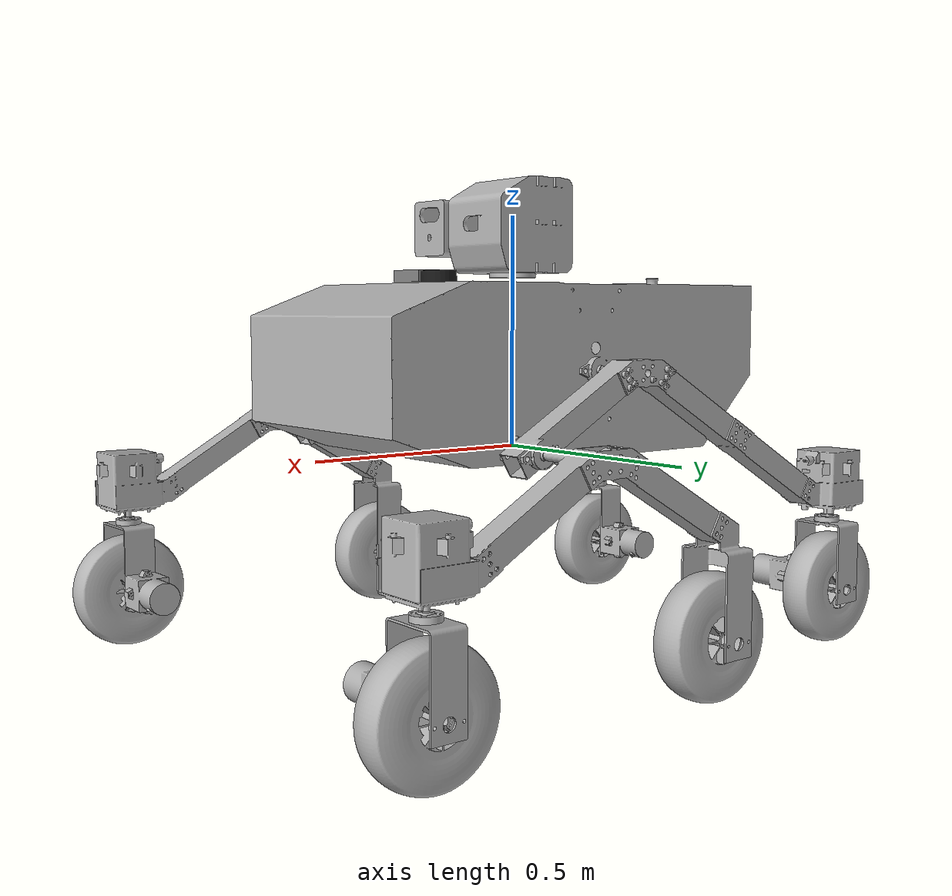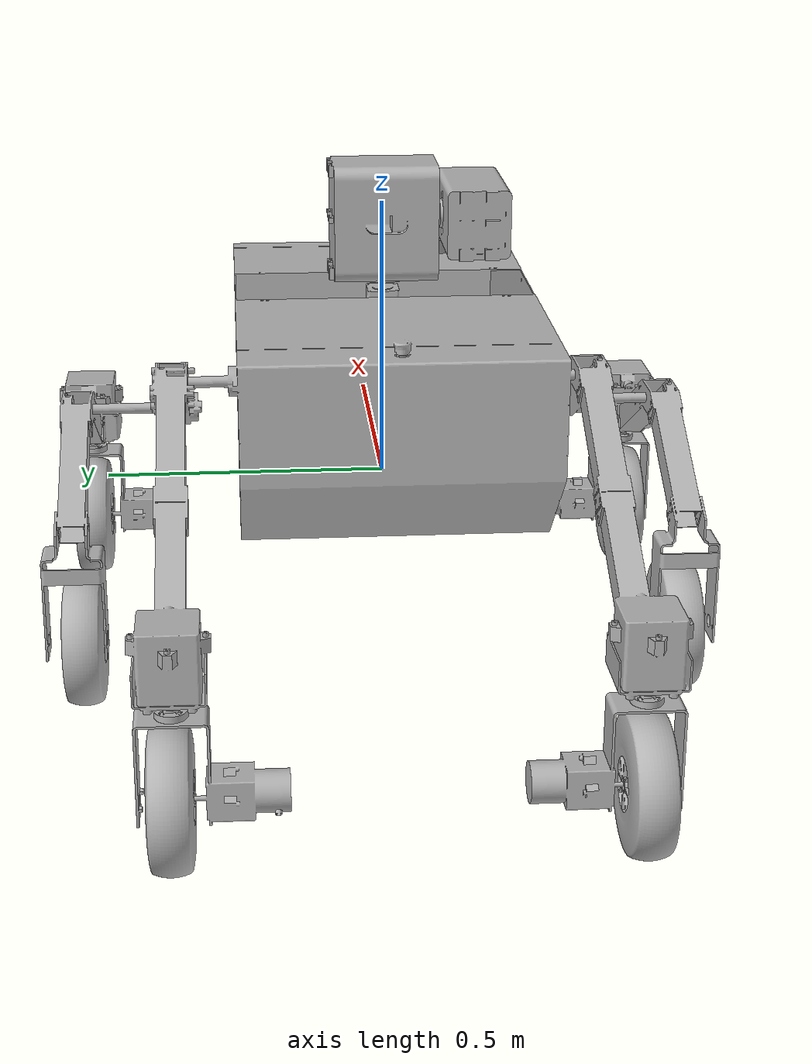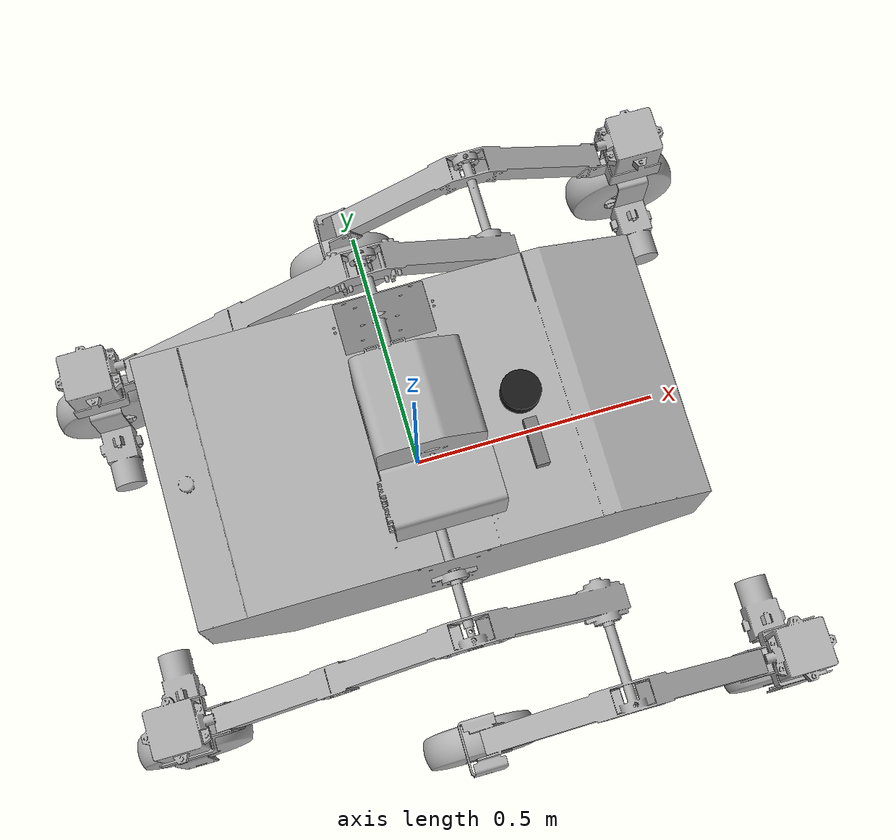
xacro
<?xml version="1.0" ?>
<robot name="ika" xmlns:xacro="http://www.ros.org/wiki/xacro">

<xacro:include filename="$(find ika_description)/urdf/materials.xacro" />
<xacro:include filename="$(find ika_description)/urdf/ika.trans" />
<xacro:include filename="$(find ika_description)/urdf/ika.gazebo" />
<xacro:include filename="$(find ika_description)/urdf/rplidar_s2.xacro"/>
<xacro:include filename="$(find ika_description)/urdf/d435_camera.xacro"/>
<link name="base_link">
  <inertial>
    <origin xyz="0.005414069729213678 -9.213349753885084e-05 0.18125650823624936" rpy="0 0 0"/>
    <mass value="33.27397338943597"/>
    <inertia ixx="1.776669" iyy="3.447502" izz="4.12897" ixy="-0.000217" iyz="8.1e-05" ixz="0.106412"/>
  </inertial>
  <visual>
    <origin xyz="0 0 0" rpy="0 0 0"/>
    <geometry>
      <mesh filename="file://$(find ika_description)/meshes/base_link.stl" scale="0.001 0.001 0.001"/>
    </geometry>
    <material name="silver"/>
  </visual>
  <collision>
    <origin xyz="0 0 0" rpy="0 0 0"/>
    <geometry>
      <mesh filename="file://$(find ika_description)/meshes/base_link.stl" scale="0.001 0.001 0.001"/>
    </geometry>
  </collision>
</link>

<!-- Lidar (RPLidar S2) -->
<xacro:rplidar_s2 parent="base_link" name="lidar" xyz="0.2 0 0.36" rpy="0 0.035 0"/>
<xacro:rplidar_s2_gazebo_plugin name="lidar"/>

<!-- Kamera (D435) -->
<xacro:realsense_d435 parent="base_link" name="camera" xyz="0.2 -0.10 0.37" rpy="0 0 0"/>
<xacro:d435_gazebo_plugins name="camera"/>

<link name="lazer_alt_v1_1">
  <inertial>
    <origin xyz="0.0014888107746208197 -0.0035899898514626357 0.10456339198720316" rpy="0 0 0"/>
    <mass value="16.247587853935794"/>
    <inertia ixx="0.136244" iyy="0.135351" izz="0.128752" ixy="0.000564" iyz="0.000306" ixz="0.003402"/>
  </inertial>
  <visual>
    <origin xyz="-0.000155 0.001158 -0.366945" rpy="0 0 0"/>
    <geometry>
      <mesh filename="file://$(find ika_description)/meshes/lazer_alt_v1_1.stl" scale="0.001 0.001 0.001"/>
    </geometry>
    <material name="silver"/>
  </visual>
  <collision>
    <origin xyz="-0.000155 0.001158 -0.366945" rpy="0 0 0"/>
    <geometry>
      <mesh filename="file://$(find ika_description)/meshes/lazer_alt_v1_1.stl" scale="0.001 0.001 0.001"/>
    </geometry>
  </collision>
</link>

<link name="lazer_kafa_v1_1">
  <inertial>
    <origin xyz="-0.0027014583019456073 -0.05982148023716494 -0.0011419657213441736" rpy="0 0 0"/>
    <mass value="8.010863664139112"/>
    <inertia ixx="0.026022" iyy="0.04774" izz="0.04586" ixy="3e-06" iyz="-2e-06" ixz="0.000606"/>
  </inertial>
  <visual>
    <origin xyz="-0.006368 0.101158 -0.476695" rpy="0 0 0"/>
    <geometry>
      <mesh filename="file://$(find ika_description)/meshes/lazer_kafa_v1_1.stl" scale="0.001 0.001 0.001"/>
    </geometry>
    <material name="silver"/>
  </visual>
  <collision>
    <origin xyz="-0.006368 0.101158 -0.476695" rpy="0 0 0"/>
    <geometry>
      <mesh filename="file://$(find ika_description)/meshes/lazer_kafa_v1_1.stl" scale="0.001 0.001 0.001"/>
    </geometry>
  </collision>
</link>

<link name="sag_montaj_v1__1__1">
  <inertial>
    <origin xyz="-0.44919019560547796 0.00875238591849753 -0.21462842041488556" rpy="0 0 0"/>
    <mass value="4.8161613365412785"/>
    <inertia ixx="0.040395" iyy="0.433816" izz="0.40114" ixy="0.000534" iyz="0.000255" ixz="-0.096748"/>
  </inertial>
  <visual>
    <origin xyz="0.002 0.39 -0.175" rpy="0 0 0"/>
    <geometry>
      <mesh filename="file://$(find ika_description)/meshes/sag_montaj_v1__1__1.stl" scale="0.001 0.001 0.001"/>
    </geometry>
    <material name="silver"/>
  </visual>
  <collision>
    <origin xyz="0.002 0.39 -0.175" rpy="0 0 0"/>
    <geometry>
      <mesh filename="file://$(find ika_description)/meshes/sag_montaj_v1__1__1.stl" scale="0.001 0.001 0.001"/>
    </geometry>
  </collision>
</link>

<link name="sol_montaj_1_v81_v1__1__1">
  <inertial>
    <origin xyz="-0.43495134921430906 -0.008654379051771854 -0.20911455415076846" rpy="0 0 0"/>
    <mass value="4.962424557602971"/>
    <inertia ixx="0.04574" iyy="0.473545" izz="0.4357" ixy="-0.000757" iyz="-0.000346" ixz="-0.109048"/>
  </inertial>
  <visual>
    <origin xyz="0.001 -0.389 -0.175762" rpy="0 0 0"/>
    <geometry>
      <mesh filename="file://$(find ika_description)/meshes/sol_montaj_1_v81_v1__1__1.stl" scale="0.001 0.001 0.001"/>
    </geometry>
    <material name="silver"/>
  </visual>
  <collision>
    <origin xyz="0.001 -0.389 -0.175762" rpy="0 0 0"/>
    <geometry>
      <mesh filename="file://$(find ika_description)/meshes/sol_montaj_1_v81_v1__1__1.stl" scale="0.001 0.001 0.001"/>
    </geometry>
  </collision>
</link>

<link name="sag_on_montaj_v1_1">
  <inertial>
    <origin xyz="0.23792899315908234 -0.1512484643207898 -0.1176233402579002" rpy="0 0 0"/>
    <mass value="4.823288970520174"/>
    <inertia ixx="0.026621" iyy="0.284354" izz="0.268742" ixy="0.001967" iyz="-0.001043" ixz="-0.011091"/>
  </inertial>
  <visual>
    <origin xyz="-0.271451 0.421 -0.036349" rpy="0 0 0"/>
    <geometry>
      <mesh filename="file://$(find ika_description)/meshes/sag_on_montaj_v1_1.stl" scale="0.001 0.001 0.001"/>
    </geometry>
    <material name="silver"/>
  </visual>
  <collision>
    <origin xyz="-0.271451 0.421 -0.036349" rpy="0 0 0"/>
    <geometry>
      <mesh filename="file://$(find ika_description)/meshes/sag_on_montaj_v1_1.stl" scale="0.001 0.001 0.001"/>
    </geometry>
  </collision>
</link>

<link name="sol_on_montaj_v1_1">
  <inertial>
    <origin xyz="0.2379600351489939 0.15126109990473752 -0.11763901703510032" rpy="0 0 0"/>
    <mass value="4.822659769811814"/>
    <inertia ixx="0.026605" iyy="0.28431" izz="0.268699" ixy="-0.001953" iyz="0.001036" ixz="-0.011108"/>
  </inertial>
  <visual>
    <origin xyz="-0.272451 -0.42 -0.037112" rpy="0 0 0"/>
    <geometry>
      <mesh filename="file://$(find ika_description)/meshes/sol_on_montaj_v1_1.stl" scale="0.001 0.001 0.001"/>
    </geometry>
    <material name="silver"/>
  </visual>
  <collision>
    <origin xyz="-0.272451 -0.42 -0.037112" rpy="0 0 0"/>
    <geometry>
      <mesh filename="file://$(find ika_description)/meshes/sol_on_montaj_v1_1.stl" scale="0.001 0.001 0.001"/>
    </geometry>
  </collision>
</link>

<link name="360_motaj_1">
  <inertial>
    <origin xyz="-8.866769190429835e-06 -0.08695266369407406 -0.13583838034513812" rpy="0 0 0"/>
    <mass value="1.7763238488718671"/>
    <inertia ixx="0.011308" iyy="0.004985" izz="0.007632" ixy="-1e-06" iyz="-0.003117" ixz="-0.0"/>
  </inertial>
  <visual>
    <origin xyz="-0.647652 -0.573 0.165088" rpy="0 0 0"/>
    <geometry>
      <mesh filename="file://$(find ika_description)/meshes/360_motaj_1.stl" scale="0.001 0.001 0.001"/>
    </geometry>
    <material name="silver"/>
  </visual>
  <collision>
    <origin xyz="-0.647652 -0.573 0.165088" rpy="0 0 0"/>
    <geometry>
      <mesh filename="file://$(find ika_description)/meshes/360_motaj_1.stl" scale="0.001 0.001 0.001"/>
    </geometry>
  </collision>
</link>

<link name="360_motaj__1__1">
  <inertial>
    <origin xyz="4.109019291154148e-06 0.09826426441801484 -0.1453382099052203" rpy="0 0 0"/>
    <mass value="3.5648016982449495"/>
    <inertia ixx="0.015238" iyy="0.006535" izz="0.010918" ixy="-0.0" iyz="0.003744" ixz="-0.0"/>
  </inertial>
  <visual>
    <origin xyz="-0.646929 0.574 0.165851" rpy="0 0 0"/>
    <geometry>
      <mesh filename="file://$(find ika_description)/meshes/360_motaj__1__1.stl" scale="0.001 0.001 0.001"/>
    </geometry>
    <material name="silver"/>
  </visual>
  <collision>
    <origin xyz="-0.646929 0.574 0.165851" rpy="0 0 0"/>
    <geometry>
      <mesh filename="file://$(find ika_description)/meshes/360_motaj__1__1.stl" scale="0.001 0.001 0.001"/>
    </geometry>
  </collision>
</link>

<link name="360_montaj_1">
  <inertial>
    <origin xyz="-8.430075911336488e-06 -0.08695261407749894 -0.13583771694543326" rpy="0 0 0"/>
    <mass value="1.7763227489896294"/>
    <inertia ixx="0.011308" iyy="0.004985" izz="0.007632" ixy="-1e-06" iyz="-0.003117" ixz="-0.0"/>
  </inertial>
  <visual>
    <origin xyz="0.613492 -0.38 0.163438" rpy="0 0 0"/>
    <geometry>
      <mesh filename="file://$(find ika_description)/meshes/360_montaj_1.stl" scale="0.001 0.001 0.001"/>
    </geometry>
    <material name="silver"/>
  </visual>
  <collision>
    <origin xyz="0.613492 -0.38 0.163438" rpy="0 0 0"/>
    <geometry>
      <mesh filename="file://$(find ika_description)/meshes/360_montaj_1.stl" scale="0.001 0.001 0.001"/>
    </geometry>
  </collision>
</link>

<link name="360_motaj__2__1">
  <inertial>
    <origin xyz="4.703063507305316e-06 0.09826428565158002 -0.14533858598365362" rpy="0 0 0"/>
    <mass value="3.5648027981271886"/>
    <inertia ixx="0.015238" iyy="0.006535" izz="0.010918" ixy="-0.0" iyz="0.003744" ixz="-0.0"/>
  </inertial>
  <visual>
    <origin xyz="0.614492 0.381 0.1642" rpy="0 0 0"/>
    <geometry>
      <mesh filename="file://$(find ika_description)/meshes/360_motaj__2__1.stl" scale="0.001 0.001 0.001"/>
    </geometry>
    <material name="silver"/>
  </visual>
  <collision>
    <origin xyz="0.614492 0.381 0.1642" rpy="0 0 0"/>
    <geometry>
      <mesh filename="file://$(find ika_description)/meshes/360_motaj__2__1.stl" scale="0.001 0.001 0.001"/>
    </geometry>
  </collision>
</link>

<link name="tekerlek_v1_1">
  <inertial>
    <origin xyz="3.577735860904596e-07 0.037255183382986556 4.4407855009920283e-07" rpy="0 0 0"/>
    <mass value="2.9370630820602988"/>
    <inertia ixx="0.012817" iyy="0.023197" izz="0.012817" ixy="-0.0" iyz="-0.0" ixz="0.0"/>
  </inertial>
  <visual>
    <origin xyz="0.613492 -0.348 0.328938" rpy="0 0 0"/>
    <geometry>
      <mesh filename="file://$(find ika_description)/meshes/tekerlek_v1_1.stl" scale="0.001 0.001 0.001"/>
    </geometry>
    <material name="silver"/>
  </visual>
  <collision>
    <origin xyz="0.613492 -0.348 0.328938" rpy="0 0 0"/>
    <geometry>
      <mesh filename="file://$(find ika_description)/meshes/tekerlek_v1_1.stl" scale="0.001 0.001 0.001"/>
    </geometry>
  </collision>
</link>

<link name="tekerlek_v1__1__1">
  <inertial>
    <origin xyz="4.826719001323199e-07 0.03725518338296885 -2.1793502147371413e-07" rpy="0 0 0"/>
    <mass value="2.9370630820602988"/>
    <inertia ixx="0.012817" iyy="0.023197" izz="0.012817" ixy="-0.0" iyz="-0.0" ixz="0.0"/>
  </inertial>
  <visual>
    <origin xyz="0.022046 -0.5205 0.316888" rpy="0 0 0"/>
    <geometry>
      <mesh filename="file://$(find ika_description)/meshes/tekerlek_v1__1__1.stl" scale="0.001 0.001 0.001"/>
    </geometry>
    <material name="silver"/>
  </visual>
  <collision>
    <origin xyz="0.022046 -0.5205 0.316888" rpy="0 0 0"/>
    <geometry>
      <mesh filename="file://$(find ika_description)/meshes/tekerlek_v1__1__1.stl" scale="0.001 0.001 0.001"/>
    </geometry>
  </collision>
</link>

<link name="tekerlek_v1__2__1">
  <inertial>
    <origin xyz="-1.0373574077515713e-07 0.03725518338296674 -1.9101605741589367e-07" rpy="0 0 0"/>
    <mass value="2.9370630820602988"/>
    <inertia ixx="0.012817" iyy="0.023197" izz="0.012817" ixy="-0.0" iyz="-0.0" ixz="0.0"/>
  </inertial>
  <visual>
    <origin xyz="-0.647652 -0.541 0.330588" rpy="0 0 0"/>
    <geometry>
      <mesh filename="file://$(find ika_description)/meshes/tekerlek_v1__2__1.stl" scale="0.001 0.001 0.001"/>
    </geometry>
    <material name="silver"/>
  </visual>
  <collision>
    <origin xyz="-0.647652 -0.541 0.330588" rpy="0 0 0"/>
    <geometry>
      <mesh filename="file://$(find ika_description)/meshes/tekerlek_v1__2__1.stl" scale="0.001 0.001 0.001"/>
    </geometry>
  </collision>
</link>

<link name="tekerlek_v1__3__1">
  <inertial>
    <origin xyz="-2.912088178375072e-07 -0.03724481661703771 3.649053607057695e-07" rpy="0 0 0"/>
    <mass value="2.9370630820602988"/>
    <inertia ixx="0.012817" iyy="0.023197" izz="0.012817" ixy="0.0" iyz="-0.0" ixz="0.0"/>
  </inertial>
  <visual>
    <origin xyz="-0.646929 0.542 0.331851" rpy="0 0 0"/>
    <geometry>
      <mesh filename="file://$(find ika_description)/meshes/tekerlek_v1__3__1.stl" scale="0.001 0.001 0.001"/>
    </geometry>
    <material name="silver"/>
  </visual>
  <collision>
    <origin xyz="-0.646929 0.542 0.331851" rpy="0 0 0"/>
    <geometry>
      <mesh filename="file://$(find ika_description)/meshes/tekerlek_v1__3__1.stl" scale="0.001 0.001 0.001"/>
    </geometry>
  </collision>
</link>

<link name="tekerlek_v1__4__1">
  <inertial>
    <origin xyz="4.826718991157719e-07 -0.03724481661703838 3.3798639814675013e-07" rpy="0 0 0"/>
    <mass value="2.9370630820602988"/>
    <inertia ixx="0.012817" iyy="0.023197" izz="0.012817" ixy="-0.0" iyz="-0.0" ixz="0.0"/>
  </inertial>
  <visual>
    <origin xyz="0.023046 0.5215 0.317651" rpy="0 0 0"/>
    <geometry>
      <mesh filename="file://$(find ika_description)/meshes/tekerlek_v1__4__1.stl" scale="0.001 0.001 0.001"/>
    </geometry>
    <material name="silver"/>
  </visual>
  <collision>
    <origin xyz="0.023046 0.5215 0.317651" rpy="0 0 0"/>
    <geometry>
      <mesh filename="file://$(find ika_description)/meshes/tekerlek_v1__4__1.stl" scale="0.001 0.001 0.001"/>
    </geometry>
  </collision>
</link>

<link name="tekerlek_1">
  <inertial>
    <origin xyz="3.577735889770395e-07 -0.03724481661706941 -3.352873534367973e-14" rpy="0 0 0"/>
    <mass value="2.9370630820602988"/>
    <inertia ixx="0.012817" iyy="0.023197" izz="0.012817" ixy="-0.0" iyz="-0.0" ixz="0.0"/>
  </inertial>
  <visual>
    <origin xyz="0.614492 0.349 0.3302" rpy="0 0 0"/>
    <geometry>
      <mesh filename="file://$(find ika_description)/meshes/tekerlek_1.stl" scale="0.001 0.001 0.001"/>
    </geometry>
    <material name="silver"/>
  </visual>
  <collision>
    <origin xyz="0.614492 0.349 0.3302" rpy="0 0 0"/>
    <geometry>
      <mesh filename="file://$(find ika_description)/meshes/tekerlek_1.stl" scale="0.001 0.001 0.001"/>
    </geometry>
  </collision>
</link>

<joint name="laser_alt" type="fixed">
  <origin xyz="0.000155 -0.001158 0.366945" rpy="0 0 0"/>
  <parent link="base_link"/>
  <child link="lazer_alt_v1_1"/>
  <axis xyz="0.0 0.0 1.0"/>
</joint>

<joint name="laser_ust" type="fixed">
  <origin xyz="0.006213 -0.1 0.10975" rpy="0 0 0"/>
  <parent link="lazer_alt_v1_1"/>
  <child link="lazer_kafa_v1_1"/>
  <axis xyz="0.0 -1.0 -0.0"/>
  <limit upper="0.523599" lower="-0.261799" effort="100" velocity="100"/>
</joint>

<joint name="sag_kol" type="fixed">
  <origin xyz="-0.002 -0.39 0.175" rpy="0 0 0"/>
  <parent link="base_link"/>
  <child link="sag_montaj_v1__1__1"/>
  <axis xyz="0.0 -1.0 0.0"/>
</joint>

<joint name="sol_kol" type="fixed">
  <origin xyz="-0.001 0.389 0.175762" rpy="0 0 0"/>
  <parent link="base_link"/>
  <child link="sol_montaj_1_v81_v1__1__1"/>
  <axis xyz="0.0 1.0 0.0"/>
</joint>

<joint name="sag_on_kol" type="fixed">
  <origin xyz="0.273451 -0.031 -0.138651" rpy="0 0 0"/>
  <parent link="sag_montaj_v1__1__1"/>
  <child link="sag_on_montaj_v1_1"/>
  <axis xyz="-0.0 -1.0 0.0"/>
  <limit upper="0.174533" lower="-0.174533" effort="100" velocity="100"/>
</joint>

<joint name="sol_on_kol" type="fixed">
  <origin xyz="0.273451 0.031 -0.13865" rpy="0 0 0"/>
  <parent link="sol_montaj_1_v81_v1__1__1"/>
  <child link="sol_on_montaj_v1_1"/>
  <axis xyz="0.0 1.0 -0.0"/>
  <limit upper="0.174533" lower="-0.174533" effort="100" velocity="100"/>

</joint>

<joint name="sol_on_360" type="continuous">
  <origin xyz="0.375201 0.153 -0.2022" rpy="0 0 0"/>
  <parent link="sol_on_montaj_v1_1"/>
  <child link="360_motaj_1"/>
  <axis xyz="0.0 0.0 -1.0"/>

</joint>

<joint name="sag_on_360" type="continuous">
  <origin xyz="0.375478 -0.153 -0.2022" rpy="0 0 0"/>
  <parent link="sag_on_montaj_v1_1"/>
  <child link="360_motaj__1__1"/>
  <axis xyz="-0.0 -0.0 -1.0"/>

</joint>

<joint name="sol_arka_360" type="continuous">
  <origin xyz="-0.612492 -0.009 -0.3392" rpy="0 0 0"/>
  <parent link="sol_montaj_1_v81_v1__1__1"/>
  <child link="360_montaj_1"/>
  <axis xyz="0.0 -0.0 -1.0"/>
</joint>

<joint name="sag_arka_360" type="continuous">
  <origin xyz="-0.612492 0.009 -0.3392" rpy="0 0 0"/>
  <parent link="sag_montaj_v1__1__1"/>
  <child link="360_motaj__2__1"/>
  <axis xyz="-0.0 -0.0 -1.0"/>
</joint>

<joint name="sol_arka_teker" type="continuous">
  <origin xyz="0.0 -0.032 -0.1655" rpy="0 0 0"/>
  <parent link="360_montaj_1"/>
  <child link="tekerlek_v1_1"/>
  <axis xyz="0.0 1.0 -0.0"/>
</joint>

<joint name="sol_orta_teker" type="continuous">
  <origin xyz="-0.294497 0.1005 -0.354" rpy="0 0 0"/>
  <parent link="sol_on_montaj_v1_1"/>
  <child link="tekerlek_v1__1__1"/>
  <axis xyz="0.0 1.0 -0.0"/>
</joint>

<joint name="sol_on_teker" type="continuous">
  <origin xyz="0.0 -0.032 -0.1655" rpy="0 0 0"/>
  <parent link="360_motaj_1"/>
  <child link="tekerlek_v1__2__1"/>
  <axis xyz="0.0 1.0 0.0"/>
</joint>

<joint name="sag_on_teker" type="continuous">
  <origin xyz="0.0 0.032 -0.166" rpy="0 0 0"/>
  <parent link="360_motaj__1__1"/>
  <child link="tekerlek_v1__3__1"/>
  <axis xyz="-0.0 1.0 -0.0"/>
</joint>

<joint name="sag_orta_teker" type="continuous">
  <origin xyz="-0.294497 -0.1005 -0.354" rpy="0 0 0"/>
  <parent link="sag_on_montaj_v1_1"/>
  <child link="tekerlek_v1__4__1"/>
  <axis xyz="-0.0 1.0 -0.0"/>
</joint>

<joint name="sag_arka_teker" type="continuous">
  <origin xyz="0.0 0.032 -0.166" rpy="0 0 0"/>
  <parent link="360_motaj__2__1"/>
  <child link="tekerlek_1"/>
  <axis xyz="0.0 1.0 0.0"/>
</joint>

<!-- ROS2 Control Interface -->
<ros2_control name="GazeboSystem" type="system">
    <hardware>
        <plugin>gazebo_ros2_control/GazeboSystem</plugin>
    </hardware>
    <!-- Steering joints (4 steerable wheels) -->
    <joint name="sol_on_360">
        <command_interface name="position"/>
        <state_interface name="position"/>
        <state_interface name="velocity"/>
    </joint>
    <joint name="sag_on_360">
        <command_interface name="position"/>
        <state_interface name="position"/>
        <state_interface name="velocity"/>
    </joint>
    <joint name="sol_arka_360">
        <command_interface name="position"/>
        <state_interface name="position"/>
        <state_interface name="velocity"/>
    </joint>
    <joint name="sag_arka_360">
        <command_interface name="position"/>
        <state_interface name="position"/>
        <state_interface name="velocity"/>
    </joint>
    <!-- Drive wheels (6 wheels) -->
    <joint name="sol_on_teker">
        <command_interface name="velocity"/>
        <state_interface name="position"/>
        <state_interface name="velocity"/>
    </joint>
    <joint name="sol_orta_teker">
        <command_interface name="velocity"/>
        <state_interface name="position"/>
        <state_interface name="velocity"/>
    </joint>
    <joint name="sol_arka_teker">
        <command_interface name="velocity"/>
        <state_interface name="position"/>
        <state_interface name="velocity"/>
    </joint>
    <joint name="sag_on_teker">
        <command_interface name="velocity"/>
        <state_interface name="position"/>
        <state_interface name="velocity"/>
    </joint>
    <joint name="sag_orta_teker">
        <command_interface name="velocity"/>
        <state_interface name="position"/>
        <state_interface name="velocity"/>
    </joint>
    <joint name="sag_arka_teker">
        <command_interface name="velocity"/>
        <state_interface name="position"/>
        <state_interface name="velocity"/>
    </joint>
</ros2_control>

<!-- Transmissions for steering joints -->
<transmission name="sol_on_360_trans">
    <type>transmission_interface/SimpleTransmission</type>
    <joint name="sol_on_360">
        <hardwareInterface>hardware_interface/PositionJointInterface</hardwareInterface>
    </joint>
    <actuator name="sol_on_360_actuator">
        <hardwareInterface>hardware_interface/PositionJointInterface</hardwareInterface>
        <mechanicalReduction>1</mechanicalReduction>
    </actuator>
</transmission>

<transmission name="sag_on_360_trans">
    <type>transmission_interface/SimpleTransmission</type>
    <joint name="sag_on_360">
        <hardwareInterface>hardware_interface/PositionJointInterface</hardwareInterface>
    </joint>
    <actuator name="sag_on_360_actuator">
        <hardwareInterface>hardware_interface/PositionJointInterface</hardwareInterface>
        <mechanicalReduction>1</mechanicalReduction>
    </actuator>
</transmission>

<transmission name="sol_arka_360_trans">
    <type>transmission_interface/SimpleTransmission</type>
    <joint name="sol_arka_360">
        <hardwareInterface>hardware_interface/PositionJointInterface</hardwareInterface>
    </joint>
    <actuator name="sol_arka_360_actuator">
        <hardwareInterface>hardware_interface/PositionJointInterface</hardwareInterface>
        <mechanicalReduction>1</mechanicalReduction>
    </actuator>
</transmission>

<transmission name="sag_arka_360_trans">
    <type>transmission_interface/SimpleTransmission</type>
    <joint name="sag_arka_360">
        <hardwareInterface>hardware_interface/PositionJointInterface</hardwareInterface>
    </joint>
    <actuator name="sag_arka_360_actuator">
        <hardwareInterface>hardware_interface/PositionJointInterface</hardwareInterface>
        <mechanicalReduction>1</mechanicalReduction>
    </actuator>
</transmission>

<!-- Transmissions for drive wheels -->
<transmission name="sol_on_teker_trans">
    <type>transmission_interface/SimpleTransmission</type>
    <joint name="sol_on_teker">
        <hardwareInterface>hardware_interface/VelocityJointInterface</hardwareInterface>
    </joint>
    <actuator name="sol_on_teker_motor">
        <hardwareInterface>hardware_interface/VelocityJointInterface</hardwareInterface>
        <mechanicalReduction>1</mechanicalReduction>
    </actuator>
</transmission>

<transmission name="sol_orta_teker_trans">
    <type>transmission_interface/SimpleTransmission</type>
    <joint name="sol_orta_teker">
        <hardwareInterface>hardware_interface/VelocityJointInterface</hardwareInterface>
    </joint>
    <actuator name="sol_orta_teker_motor">
        <hardwareInterface>hardware_interface/VelocityJointInterface</hardwareInterface>
        <mechanicalReduction>1</mechanicalReduction>
    </actuator>
</transmission>

<transmission name="sol_arka_teker_trans">
    <type>transmission_interface/SimpleTransmission</type>
    <joint name="sol_arka_teker">
        <hardwareInterface>hardware_interface/VelocityJointInterface</hardwareInterface>
    </joint>
    <actuator name="sol_arka_teker_motor">
        <hardwareInterface>hardware_interface/VelocityJointInterface</hardwareInterface>
        <mechanicalReduction>1</mechanicalReduction>
    </actuator>
</transmission>

<transmission name="sag_on_teker_trans">
    <type>transmission_interface/SimpleTransmission</type>
    <joint name="sag_on_teker">
        <hardwareInterface>hardware_interface/VelocityJointInterface</hardwareInterface>
    </joint>
    <actuator name="sag_on_teker_motor">
        <hardwareInterface>hardware_interface/VelocityJointInterface</hardwareInterface>
        <mechanicalReduction>1</mechanicalReduction>
    </actuator>
</transmission>

<transmission name="sag_orta_teker_trans">
    <type>transmission_interface/SimpleTransmission</type>
    <joint name="sag_orta_teker">
        <hardwareInterface>hardware_interface/VelocityJointInterface</hardwareInterface>
    </joint>
    <actuator name="sag_orta_teker_motor">
        <hardwareInterface>hardware_interface/VelocityJointInterface</hardwareInterface>
        <mechanicalReduction>1</mechanicalReduction>
    </actuator>
</transmission>

<transmission name="sag_arka_teker_trans">
    <type>transmission_interface/SimpleTransmission</type>
    <joint name="sag_arka_teker">
        <hardwareInterface>hardware_interface/VelocityJointInterface</hardwareInterface>
    </joint>
    <actuator name="sag_arka_teker_motor">
        <hardwareInterface>hardware_interface/VelocityJointInterface</hardwareInterface>
        <mechanicalReduction>1</mechanicalReduction>
    </actuator>
</transmission>

<!-- Gazebo ROS2 Control Plugin -->
<gazebo>
    <plugin name="gazebo_ros2_control" filename="libgazebo_ros2_control.so">
        <parameters>$(find ika_controller)/config/controllers.yaml</parameters>
    </plugin>
</gazebo>

<gazebo>
    <plugin name="joint_state_publisher" filename="libgazebo_ros_joint_state_publisher.so">
        <ros>
            <remapping>~/out:=joint_states</remapping>
        </ros>
        <update_rate>30</update_rate>
    </plugin>
</gazebo>

</robot>

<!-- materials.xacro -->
<robot name="ika" xmlns:xacro="http://www.ros.org/wiki/xacro" >

<material name="silver">
  <color rgba="0.700 0.700 0.700 1.000"/>
</material>

</robot>

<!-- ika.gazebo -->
<robot name="ika" xmlns:xacro="http://www.ros.org/wiki/xacro" >

<xacro:property name="body_color" value="Gazebo/Silver" />

<!-- Base Link -->
<gazebo reference="base_link">
  <material>${body_color}</material>
  <mu1>0.2</mu1>
  <mu2>0.2</mu2>
  <self_collide>true</self_collide>
  <gravity>true</gravity>
</gazebo>

<!-- Laser Alt -->
<gazebo reference="lazer_alt_v1_1">
  <material>${body_color}</material>
  <mu1>0.2</mu1>
  <mu2>0.2</mu2>
  <self_collide>true</self_collide>
</gazebo>

<!-- Laser Kafa -->
<gazebo reference="lazer_kafa_v1_1">
  <material>${body_color}</material>
  <mu1>0.2</mu1>
  <mu2>0.2</mu2>
  <self_collide>true</self_collide>
</gazebo>

<!-- Sağ Montaj -->
<gazebo reference="sag_montaj_v1__1__1">
  <material>${body_color}</material>
  <mu1>0.2</mu1>
  <mu2>0.2</mu2>
  <self_collide>true</self_collide>
</gazebo>

<!-- Sol Montaj -->
<gazebo reference="sol_montaj_1_v81_v1__1__1">
  <material>${body_color}</material>
  <mu1>0.2</mu1>
  <mu2>0.2</mu2>
  <self_collide>true</self_collide>
</gazebo>

<!-- Sağ Ön Montaj -->
<gazebo reference="sag_on_montaj_v1_1">
  <material>${body_color}</material>
  <mu1>0.2</mu1>
  <mu2>0.2</mu2>
  <self_collide>true</self_collide>
</gazebo>

<!-- Sol Ön Montaj -->
<gazebo reference="sol_on_montaj_v1_1">
  <material>${body_color}</material>
  <mu1>0.2</mu1>
  <mu2>0.2</mu2>
  <self_collide>true</self_collide>
</gazebo>

<!-- 360 Montaj 1 -->
<gazebo reference="360_motaj_1">
  <material>${body_color}</material>
  <mu1>0.2</mu1>
  <mu2>0.2</mu2>
  <self_collide>true</self_collide>
</gazebo>

<!-- 360 Montaj 2 -->
<gazebo reference="360_motaj__1__1">
  <material>${body_color}</material>
  <mu1>0.2</mu1>
  <mu2>0.2</mu2>
  <self_collide>true</self_collide>
</gazebo>

<!-- 360 Montaj 3 -->
<gazebo reference="360_montaj_1">
  <material>${body_color}</material>
  <mu1>0.2</mu1>
  <mu2>0.2</mu2>
  <self_collide>true</self_collide>
</gazebo>

<!-- 360 Montaj 4 -->
<gazebo reference="360_motaj__2__1">
  <material>${body_color}</material>
  <mu1>0.2</mu1>
  <mu2>0.2</mu2>
  <self_collide>true</self_collide>
</gazebo>

<!-- Tekerlekler -->
<gazebo reference="tekerlek_v1_1">
  <material>${body_color}</material>
  <mu1>2.0</mu1>
  <mu2>2.0</mu2>
  <self_collide>true</self_collide>
  <kp>1000000.0</kp>
  <kd>100.0</kd>
</gazebo>

<gazebo reference="tekerlek_v1__1__1">
  <material>${body_color}</material>
  <mu1>2.0</mu1>
  <mu2>2.0</mu2>
  <self_collide>true</self_collide>
  <kp>1000000.0</kp>
  <kd>100.0</kd>
</gazebo>

<gazebo reference="tekerlek_v1__2__1">
  <material>${body_color}</material>
  <mu1>2.0</mu1>
  <mu2>2.0</mu2>
  <self_collide>true</self_collide>
  <kp>1000000.0</kp>
  <kd>100.0</kd>
</gazebo>

<gazebo reference="tekerlek_v1__3__1">
  <material>${body_color}</material>
  <mu1>2.0</mu1>
  <mu2>2.0</mu2>
  <self_collide>true</self_collide>
  <kp>1000000.0</kp>
  <kd>100.0</kd>
</gazebo>

<gazebo reference="tekerlek_v1__4__1">
  <material>${body_color}</material>
  <mu1>2.0</mu1>
  <mu2>2.0</mu2>
  <self_collide>true</self_collide>
  <kp>1000000.0</kp>
  <kd>100.0</kd>
</gazebo>

<gazebo reference="tekerlek_1">
  <material>${body_color}</material>
  <mu1>2.0</mu1>
  <mu2>2.0</mu2>
  <self_collide>true</self_collide>
  <kp>1000000.0</kp>
  <kd>100.0</kd>
</gazebo>

</robot>

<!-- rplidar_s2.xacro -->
<robot name="rplidar_s2" xmlns:xacro="http://www.ros.org/wiki/xacro">

  <!-- RPLidar S2 Macro -->
  <xacro:macro name="rplidar_s2" params="parent name:=rplidar_s2 xyz:='0 0 0' rpy:='0 0 0'">

    <!-- RPLidar S2 Base Link -->
    <link name="${name}_link">
      <visual>
        <origin xyz="0 0 0" rpy="0 0 0"/>
        <geometry>
          <cylinder radius="0.038" length="0.041"/>
        </geometry>
        <material name="rplidar_black">
          <color rgba="0.1 0.1 0.1 1"/>
        </material>
      </visual>
      <collision>
        <origin xyz="0 0 0" rpy="0 0 0"/>
        <geometry>
          <cylinder radius="0.038" length="0.041"/>
        </geometry>
      </collision>
      <inertial>
        <mass value="0.190"/>
        <origin xyz="0 0 0" rpy="0 0 0"/>
        <inertia ixx="0.000061" ixy="0.0" ixz="0.0" iyy="0.000061" iyz="0.0" izz="0.000068"/>
      </inertial>
    </link>

    <!-- RPLidar S2 Joint -->
    <joint name="${name}_joint" type="fixed">
      <origin xyz="${xyz}" rpy="${rpy}"/>
      <parent link="${parent}"/>
      <child link="${name}_link"/>
    </joint>

    <!-- Laser Scanner Frame (Optical Frame) -->
    <link name="${name}_laser_frame">
      <inertial>
        <mass value="0.001"/>
        <origin xyz="0 0 0"/>
        <inertia ixx="0.000001" ixy="0.0" ixz="0.0" iyy="0.000001" iyz="0.0" izz="0.000001"/>
      </inertial>
    </link>

    <joint name="${name}_laser_joint" type="fixed">
      <origin xyz="0 0 0.0205" rpy="0 0 0"/>
      <parent link="${name}_link"/>
      <child link="${name}_laser_frame"/>
    </joint>

  </xacro:macro>

  <!-- Gazebo Plugin for RPLidar S2 -->
  <xacro:macro name="rplidar_s2_gazebo_plugin" params="name:=rplidar_s2">

    <gazebo reference="${name}_laser_frame">
      <material>Gazebo/Black</material>
      <sensor name="${name}_laser_sensor" type="ray">
        <pose>0 0 0 0 0 0</pose>
        <ray>
          <scan>
            <horizontal>
              <samples>360</samples>
              <resolution>1</resolution>
              <min_angle>-3.14159</min_angle>
              <max_angle>3.14159</max_angle>
            </horizontal>
          </scan>
          <range>
            <min>0.6</min>
            <max>20.0</max>
            <resolution>0.02</resolution>
          </range>
          <noise>
            <type>gaussian</type>
            <mean>0.0</mean>
            <stddev>0.01</stddev>
          </noise>
        </ray>
        <update_rate>20.0</update_rate>
        <visualize>true</visualize>

        <plugin name="${name}_laser_controller" filename="libgazebo_ros_ray_sensor.so">
          <ros>
            <remapping>~/out:=/scan</remapping>
          </ros>
          <output_type>sensor_msgs/LaserScan</output_type>
          <frame_name>${name}_laser_frame</frame_name>

          <min_range>0.6</min_range>
          <max_range>20.0</max_range>
          <range_resolution>0.02</range_resolution>

        </plugin>

      </sensor>
    </gazebo>

  </xacro:macro>

</robot>

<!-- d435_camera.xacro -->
<robot name="realsense_d435" xmlns:xacro="http://www.ros.org/wiki/xacro">

  <!-- D435 Camera Macro -->
  <xacro:macro name="realsense_d435" params="parent name:=d435 xyz:='0 0 0' rpy:='0 0 0'">

    <!-- Camera Base Link -->
    <link name="${name}_link">
      <visual>
        <origin xyz="0 0 0" rpy="0 0 0"/>
        <geometry>
          <box size="0.025 0.090 0.025"/>
        </geometry>
        <material name="aluminum">
          <color rgba="0.5 0.5 0.5 1"/>
        </material>
      </visual>
      <collision>
        <origin xyz="0 0 0" rpy="0 0 0"/>
        <geometry>
          <box size="0.025 0.090 0.025"/>
        </geometry>
      </collision>
      <inertial>
        <mass value="0.072"/>
        <origin xyz="0 0 0" rpy="0 0 0"/>
        <inertia ixx="0.003881243" ixy="0.0" ixz="0.0" iyy="0.000498940" iyz="0.0" izz="0.003879257"/>
      </inertial>
    </link>

    <!-- Camera Joint -->
    <joint name="${name}_joint" type="fixed">
      <origin xyz="${xyz}" rpy="${rpy}"/>
      <parent link="${parent}"/>
      <child link="${name}_link"/>
    </joint>

    <!-- RGB Camera Link -->
    <link name="${name}_color_frame">
      <inertial>
        <mass value="0.001"/>
        <origin xyz="0 0 0"/>
        <inertia ixx="0.000001" ixy="0.0" ixz="0.0" iyy="0.000001" iyz="0.0" izz="0.000001"/>
      </inertial>
    </link>

    <joint name="${name}_color_joint" type="fixed">
      <origin xyz="0 0 0" rpy="0 0 0"/>
      <parent link="${name}_link"/>
      <child link="${name}_color_frame"/>
    </joint>

    <link name="${name}_color_optical_frame">
      <inertial>
        <mass value="0.001"/>
        <origin xyz="0 0 0"/>
        <inertia ixx="0.000001" ixy="0.0" ixz="0.0" iyy="0.000001" iyz="0.0" izz="0.000001"/>
      </inertial>
    </link>

    <joint name="${name}_color_optical_joint" type="fixed">
      <origin xyz="0 0 0" rpy="-1.5708 0 -1.5708"/>
      <parent link="${name}_color_frame"/>
      <child link="${name}_color_optical_frame"/>
    </joint>

    <!-- Depth Camera Link -->
    <link name="${name}_depth_frame">
      <inertial>
        <mass value="0.001"/>
        <origin xyz="0 0 0"/>
        <inertia ixx="0.000001" ixy="0.0" ixz="0.0" iyy="0.000001" iyz="0.0" izz="0.000001"/>
      </inertial>
    </link>

    <joint name="${name}_depth_joint" type="fixed">
      <origin xyz="0 0 0" rpy="0 0 0"/>
      <parent link="${name}_link"/>
      <child link="${name}_depth_frame"/>
    </joint>

    <link name="${name}_depth_optical_frame">
      <inertial>
        <mass value="0.001"/>
        <origin xyz="0 0 0"/>
        <inertia ixx="0.000001" ixy="0.0" ixz="0.0" iyy="0.000001" iyz="0.0" izz="0.000001"/>
      </inertial>
    </link>

    <joint name="${name}_depth_optical_joint" type="fixed">
      <origin xyz="0 0 0" rpy="-1.5708 0 -1.5708"/>
      <parent link="${name}_depth_frame"/>
      <child link="${name}_depth_optical_frame"/>
    </joint>

  </xacro:macro>

  <!-- Gazebo Plugin for D435 - Separate gazebo tags -->
  <xacro:macro name="d435_gazebo_plugins" params="name:=d435">

    <!-- RGB Camera Gazebo Plugin -->
    <gazebo reference="${name}_color_frame">
      <material>Gazebo/DarkGrey</material>
      <sensor name="${name}_rgb_camera" type="camera">
        <pose>0 0 0 0 0 0</pose>
        <camera>
          <horizontal_fov>1.211</horizontal_fov>
          <image>
            <width>640</width>
            <height>480</height>
            <format>R8G8B8</format>
          </image>
          <clip>
            <near>0.1</near>
            <far>100</far>
          </clip>
          <noise>
            <type>gaussian</type>
            <mean>0.0</mean>
            <stddev>0.007</stddev>
          </noise>
        </camera>
        <always_on>1</always_on>
        <update_rate>30</update_rate>
        <visualize>true</visualize>
        <plugin name="${name}_rgb_camera_controller" filename="libgazebo_ros_camera.so">
          <ros>
            <namespace>/ika</namespace>
          </ros>
          <camera_name>${name}_rgb</camera_name>
          <frame_name>${name}_color_optical_frame</frame_name>
          <image_topic_name>ika/camera/color/image_raw</image_topic_name>
          <camera_info_topic_name>ika/camera/color/camera_info</camera_info_topic_name>
        </plugin>
      </sensor>
    </gazebo>

    <!-- Depth Camera Gazebo Plugin -->
    <gazebo reference="${name}_depth_frame">
      <sensor name="${name}_depth_camera" type="depth">
        <pose>0 0 0 0 0 0</pose>
        <camera>
          <horizontal_fov>1.047</horizontal_fov>
          <image>
            <width>640</width>
            <height>480</height>
            <format>R_FLOAT32</format>
          </image>
          <clip>
            <near>0.1</near>
            <far>10.0</far>
          </clip>
          <noise>
            <type>gaussian</type>
            <mean>0.0</mean>
            <stddev>0.1</stddev>
          </noise>
        </camera>
        <always_on>1</always_on>
        <update_rate>30</update_rate>
        <visualize>false</visualize>
        <plugin name="${name}_depth_camera_controller" filename="libgazebo_ros_camera.so">
          <ros>
            <namespace>/ika</namespace>
          </ros>
          <camera_name>${name}_depth</camera_name>
          <frame_name>${name}_depth_optical_frame</frame_name>
          <image_topic_name>ika/camera/depth/image_raw</image_topic_name>
          <camera_info_topic_name>ika/camera/depth/camera_info</camera_info_topic_name>
        </plugin>
      </sensor>
    </gazebo>

    <!-- Point Cloud Plugin -->
    <gazebo reference="${name}_depth_frame">
      <sensor name="${name}_pointcloud" type="depth">
        <pose>0 0 0 0 0 0</pose>
        <camera>
          <horizontal_fov>1.047</horizontal_fov>
          <image>
            <width>640</width>
            <height>480</height>
          </image>
          <clip>
            <near>0.1</near>
            <far>10.0</far>
          </clip>
        </camera>
        <always_on>1</always_on>
        <update_rate>15</update_rate>
        <visualize>false</visualize>
        <plugin name="${name}_pointcloud_controller" filename="libgazebo_ros_depth_camera.so">
          <ros>
            <namespace>/ika</namespace>
          </ros>
          <camera_name>${name}_points</camera_name>
          <frame_name>${name}_depth_optical_frame</frame_name>
          <point_cloud_topic_name>ika/camera/depth/color/points</point_cloud_topic_name>
          <image_topic_name>ika/camera/depth/image_rect_raw</image_topic_name>
          <camera_info_topic_name>ika/camera/depth/camera_info</camera_info_topic_name>
          <point_cloud_cutoff>0.1</point_cloud_cutoff>
          <point_cloud_cutoff_max>10.0</point_cloud_cutoff_max>
        </plugin>
      </sensor>
    </gazebo>

  </xacro:macro>

</robot>
